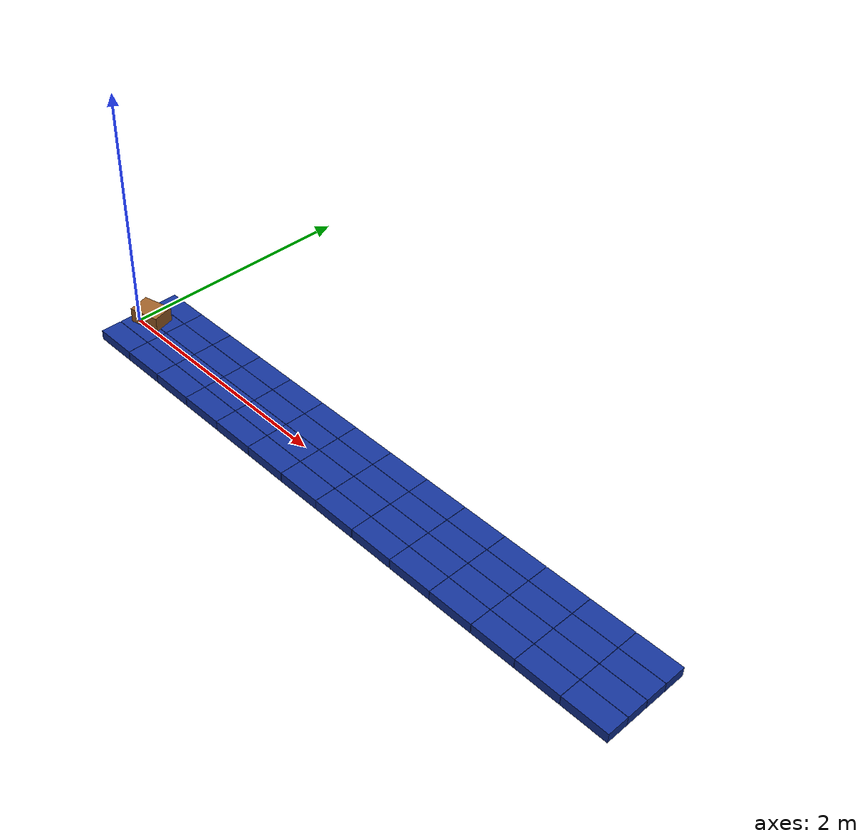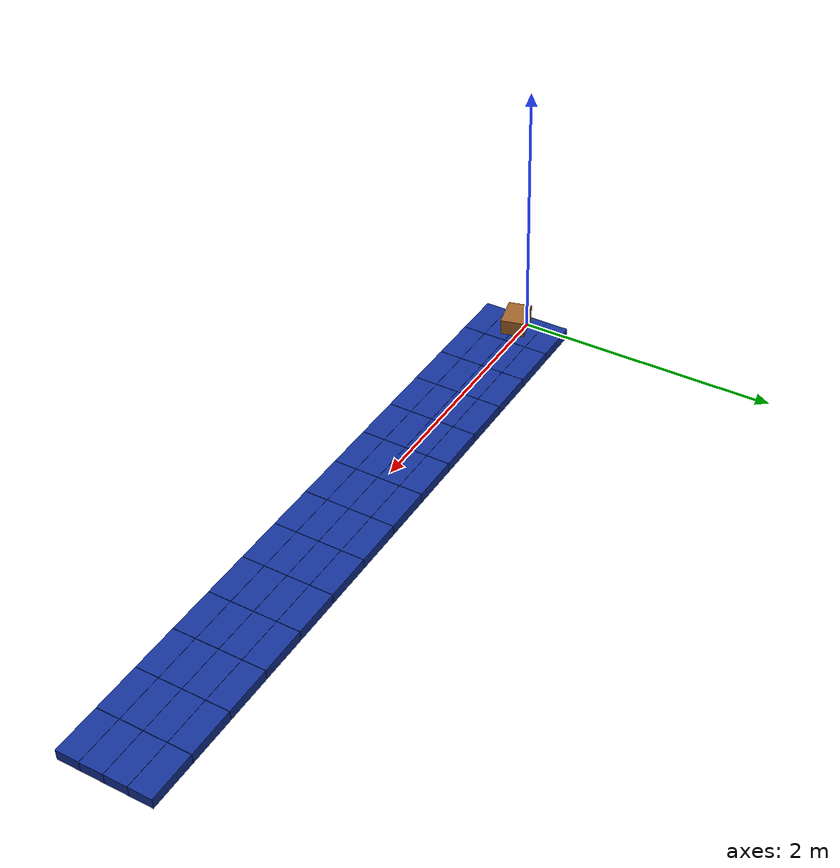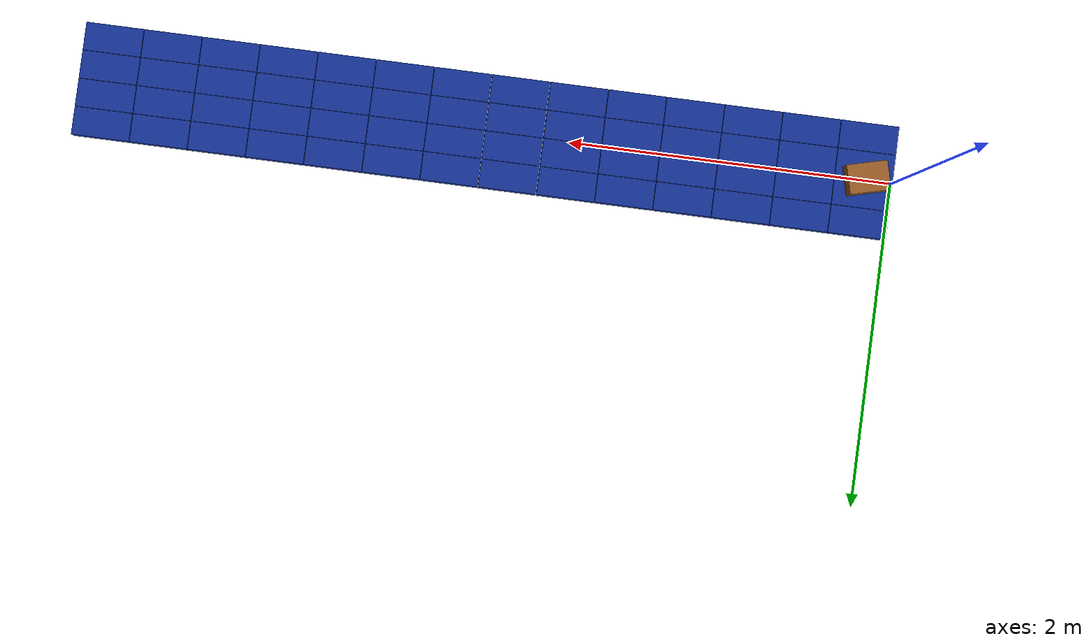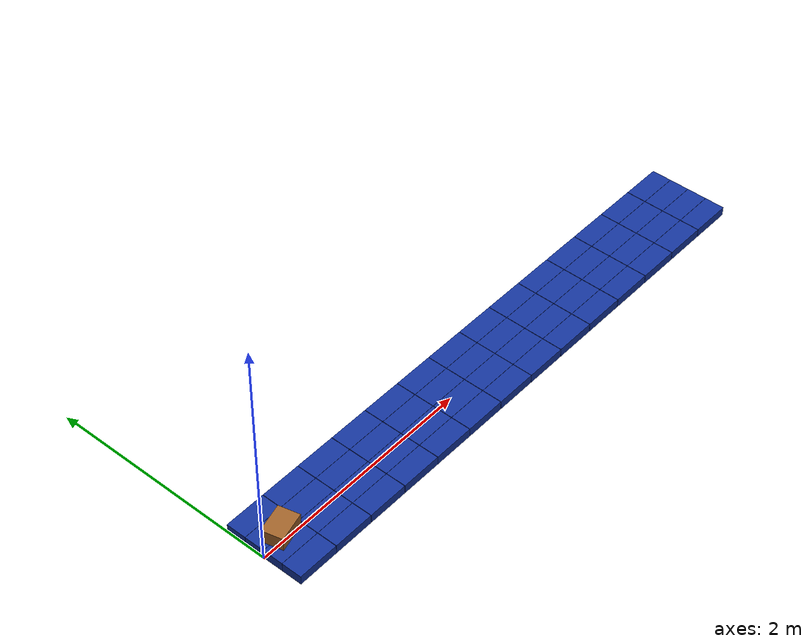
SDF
<?xml version="1.0"?>
<sdf version="1.10">
  <world name="singulator">
    <physics name="1ms" type="ignored">
      <max_step_size>0.001</max_step_size>
      <real_time_factor>1.0</real_time_factor>
    </physics>
    <plugin filename="gz-sim-physics-system" name="gz::sim::systems::Physics"/>
    <plugin filename="gz-sim-user-commands-system" name="gz::sim::systems::UserCommands"/>
    <plugin filename="gz-sim-scene-broadcaster-system" name="gz::sim::systems::SceneBroadcaster"/>
    <light type="directional" name="sun">
      <pose>0 0 10 0 0 0</pose>
      <cast_shadows>true</cast_shadows>
      <diffuse>0.8 0.8 0.8 1</diffuse>
      <specular>0.2 0.2 0.2 1</specular>
      <direction>-0.3 0.1 -0.95</direction>
    </light>

    <include>
      <uri>model://matrix_14x4</uri><name>matrix</name><pose>0 0 0 0 0 0</pose>
    </include>
    <include>
      <uri>model://box_medium</uri><name>box_0001</name><pose>0.18 0 0.16 0 0 0.25</pose>
    </include>
    <gui fullscreen="0">
      <plugin filename="MinimalScene" name="3D View">
        <gz-gui><title>3D View</title><property type="bool" key="showTitleBar">false</property><property type="string" key="state">docked</property></gz-gui>
        <engine>ogre2</engine><scene>scene</scene><ambient_light>0.6 0.6 0.6</ambient_light>
        <background_color>0.8 0.8 0.8</background_color><camera_pose>2.2 -4.7 4.0 0 0.65 1.57</camera_pose>
      </plugin>
      <plugin filename="WorldControl" name="World control"/>
      <plugin filename="WorldStats" name="World stats"/>
    </gui>
  </world>
</sdf>

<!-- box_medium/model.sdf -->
<sdf version="1.10">
  <model name="box_medium">
    <link name="base_link">
      <inertial>
        <mass>1.0</mass>
        <inertia>
          <ixx>0.003900</ixx>
          <ixy>0.0</ixy>
          <ixz>0.0</ixz>
          <iyy>0.006408</iyy>
          <iyz>0.0</iyz>
          <izz>0.007908</izz>
        </inertia>
      </inertial>
      <collision name="collision">
        <geometry><box><size>0.25 0.18 0.12</size></box></geometry>
        <surface>
          <friction><ode><mu>0.70</mu><mu2>0.70</mu2></ode></friction>
          <bounce>
            <restitution_coefficient>0.08</restitution_coefficient>
            <threshold>100000</threshold>
          </bounce>
        </surface>
      </collision>
      <visual name="visual">
        <geometry><box><size>0.25 0.18 0.12</size></box></geometry>
        <material>
          <ambient>0.55 0.32 0.12 1</ambient>
          <diffuse>0.62 0.38 0.16 1</diffuse>
        </material>
      </visual>
    </link>
  </model>
</sdf>
